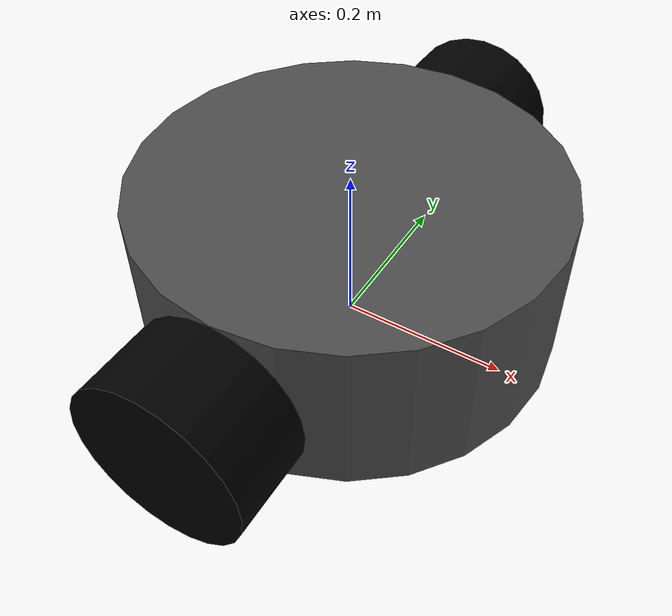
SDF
<?xml version="1.0"?>
<sdf version="1.6">
  <model name="vehicle">
    <static>false</static>

    <!-- ================= BASE ================= -->
    <link name="base_link">
      <pose>0 0 0.1 0 0 0</pose>

      <inertial>
        <mass>8.0</mass>
        <inertia>
          <ixx>0.2</ixx>
          <iyy>0.2</iyy>
          <izz>0.3</izz>
        </inertia>
      </inertial>

      <collision name="collision">
        <geometry>
          <cylinder>
            <radius>0.25</radius>
            <length>0.2</length>
          </cylinder>
        </geometry>
      </collision>

      <visual name="visual">
        <geometry>
          <cylinder>
            <radius>0.25</radius>
            <length>0.2</length>
          </cylinder>
        </geometry>
        <material>
          <ambient>0.2 0.2 0.2 1</ambient>
          <diffuse>0.3 0.3 0.3 1</diffuse>
        </material>
      </visual>

      <!-- ================= LIDAR ================= -->
      <sensor name="lidar" type="ray">
        <pose>0 0 0.25 0 0 0</pose>
        <update_rate>10</update_rate>
        <ray>
          <scan>
            <horizontal>
              <samples>720</samples>
              <resolution>1</resolution>
              <min_angle>-3.14159</min_angle>
              <max_angle>3.14159</max_angle>
            </horizontal>
          </scan>
          <range>
            <min>0.12</min>
            <max>10.0</max>
            <resolution>0.01</resolution>
          </range>
        </ray>

        <plugin name="laser_plugin" filename="libgazebo_ros_ray_sensor.so">
          <ros>
            <remapping>~/out:=/scan</remapping>
          </ros>
          <output_type>sensor_msgs/LaserScan</output_type>
          <frame_name>base_link</frame_name>
          <max_wheel_torque>120.0</max_wheel_torque>
          <max_wheel_acceleration>50.0</max_wheel_acceleration>

        </plugin>
      </sensor>
    </link>

    <!-- ================= LEFT WHEEL ================= -->
    <link name="left_wheel">
      <!-- keep rotation so cylinder axis becomes wheel axle -->
      <pose>0 0.3 0.1 1.5707 0 0</pose>

      <collision name="collision">
        <geometry>
          <cylinder>
            <radius>0.1</radius>
            <length>0.10</length>  <!-- was 0.05 -->
          </cylinder>
        </geometry>
      </collision>

      <visual name="visual">
        <geometry>
          <cylinder>
            <radius>0.1</radius>
            <length>0.10</length>  <!-- was 0.05 -->
          </cylinder>
        </geometry>
        <material>
          <ambient>0 0 0 1</ambient>
          <diffuse>0 0 0 1</diffuse>
        </material>
      </visual>
    </link>

    <!-- ================= RIGHT WHEEL ================= -->
    <link name="right_wheel">
      <pose>0 -0.3 0.1 1.5707 0 0</pose>

      <collision name="collision">
        <geometry>
          <cylinder>
            <radius>0.1</radius>
            <length>0.10</length>  <!-- was 0.05 -->
          </cylinder>
        </geometry>
      </collision>

      <visual name="visual">
        <geometry>
          <cylinder>
            <radius>0.1</radius>
            <length>0.10</length>  <!-- was 0.05 -->
          </cylinder>
        </geometry>
        <material>
          <ambient>0 0 0 1</ambient>
          <diffuse>0 0 0 1</diffuse>
        </material>
      </visual>
    </link>

    <!-- ================= CASTER ================= -->
    <link name="caster">
      <pose>-0.2 0 0.05 0 0 0</pose>
      <collision name="collision">
        <geometry>
          <sphere>
            <radius>0.05</radius>
          </sphere>
        </geometry>
      </collision>
      <visual name="visual">
        <geometry>
          <sphere>
            <radius>0.05</radius>
          </sphere>
        </geometry>
      </visual>
    </link>

    <!-- ================= JOINTS ================= -->
    <joint name="left_wheel_joint" type="revolute">
      <parent>base_link</parent>
      <child>left_wheel</child>
      <axis>
        <xyz>0 0 -1</xyz>
      </axis>
    </joint>

    <joint name="right_wheel_joint" type="revolute">
      <parent>base_link</parent>
      <child>right_wheel</child>
      <axis>
        <xyz>0 0 -1</xyz>
      </axis>
    </joint>

    <joint name="caster_joint" type="fixed">
      <parent>base_link</parent>
      <child>caster</child>
    </joint>

    <!-- ================= DIFF DRIVE ================= -->
    <plugin name="diff_drive" filename="libgazebo_ros_diff_drive.so">
      <ros>
        <remapping>cmd_vel:=/cmd_vel</remapping>
      </ros>

      <left_joint>left_wheel_joint</left_joint>
      <right_joint>right_wheel_joint</right_joint>

      <wheel_separation>0.6</wheel_separation>
      <wheel_diameter>0.2</wheel_diameter>

      <publish_odom>true</publish_odom>
      <publish_odom_tf>true</publish_odom_tf>
      <publish_wheel_tf>true</publish_wheel_tf>
      <odometry_topic>odom</odometry_topic>
      <odometry_frame>odom</odometry_frame>
      <robot_base_frame>base_link</robot_base_frame>
    </plugin>

  </model>
</sdf>
